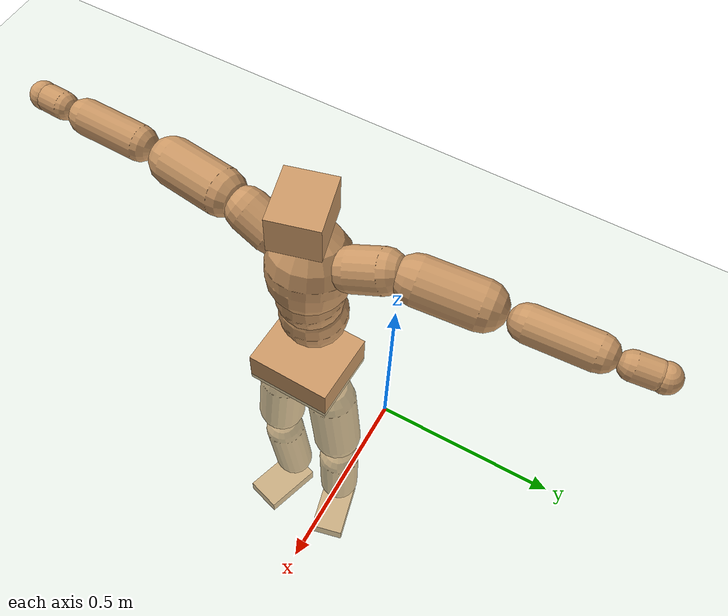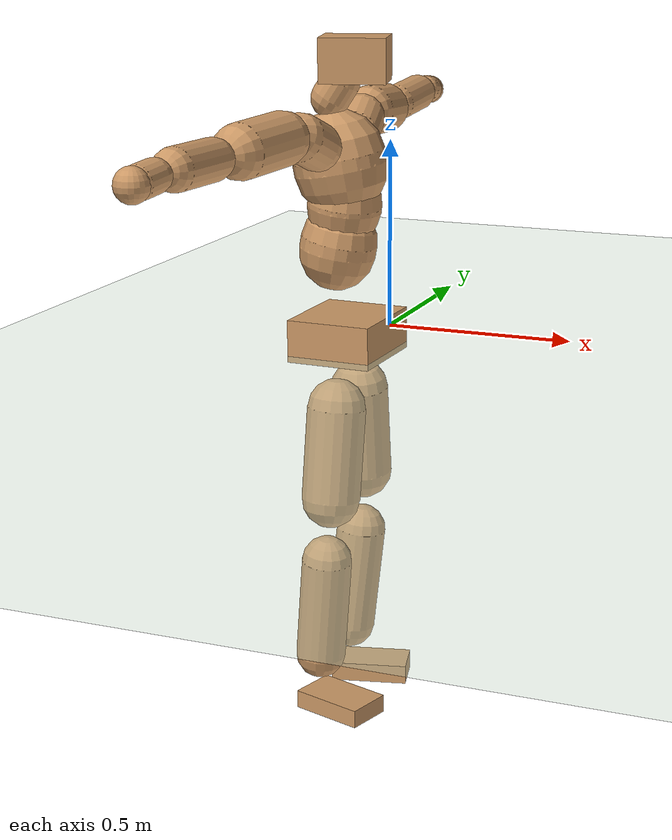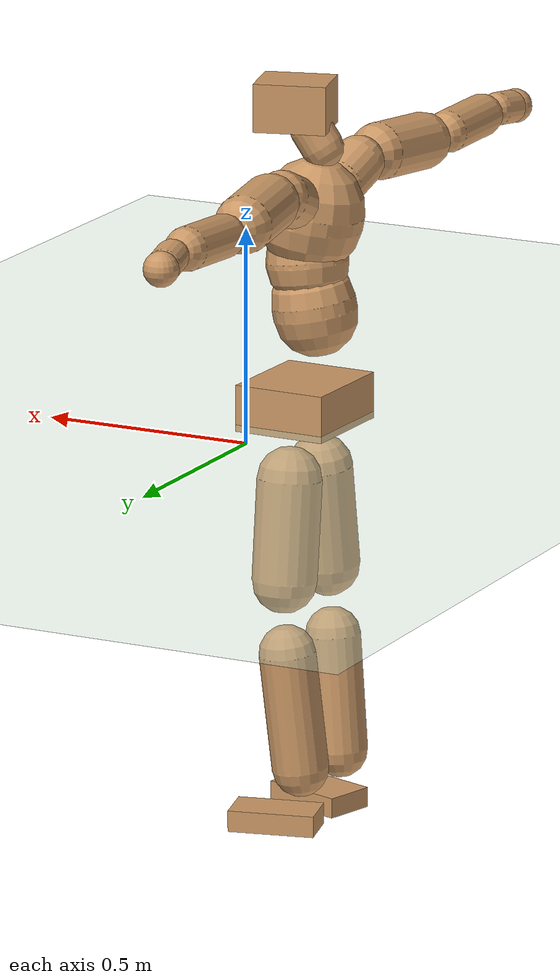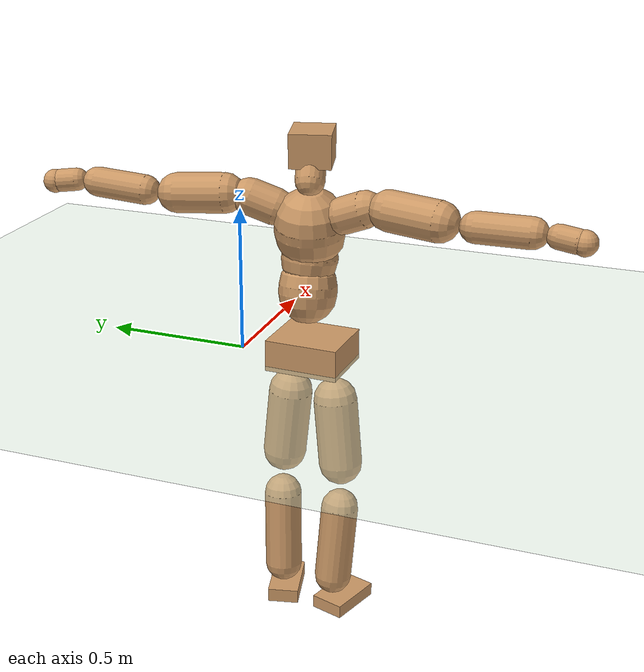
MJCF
<mujoco model="humanoid">
  <compiler coordinate="local" angle="radian"/>
  <default>
    <joint damping="0.0" armature="0.01" stiffness="0.0" limited="true"/>
    <geom conaffinity="1" condim="3" contype="7" margin="0.001" rgba="0.8 0.6 .4 1"/>
  </default>
  <asset>
    <texture type="skybox" builtin="gradient" rgb1=".4 .5 .6" rgb2="0 0 0" width="100" height="100"/>
    <texture builtin="flat" height="1278" mark="cross" markrgb="1 1 1" name="texgeom" random="0.01" rgb1="0.8 0.6 0.4" rgb2="0.8 0.6 0.4" type="cube" width="127"/>
    <texture builtin="checker" height="100" name="texplane" rgb1="0 0 0" rgb2="0.8 0.8 0.8" type="2d" width="100"/>
    <material name="MatPlane" reflectance="0.5" shininess="1" specular="1" texrepeat="60 60" texture="texplane"/>
    <material name="geom" texture="texgeom" texuniform="true"/>
  </asset>
  <worldbody>
    <light cutoff="100" diffuse="1 1 1" dir="-0 0 -1.3" directional="true" exponent="1" pos="0 0 1.3" specular=".1 .1 .1"/>
    <geom conaffinity="1" condim="3" name="floor" pos="0 0 0" rgba="0.8 0.9 0.8 1" size="100 100 .2" type="plane" material="MatPlane"/>
    <body name="Pelvis" pos="-0.0018 -0.2655 0.0444">
      <freejoint name="Pelvis"/>
      <geom type="box" contype="1" conaffinity="1" density="500" pos="-0.0127 0.0004 -0.0084" size="0.1101 0.1268 0.0544" quat="0.9999 0.0000 0.0000 -0.0157" name="Pelvis"/>
      <body name="L_Hip" pos="-0.0141 0.0723 -0.0922">
        <joint name="L_Hip_x" type="hinge" pos="0 0 0" axis="1 0 0" stiffness="800" damping="80" armature="0.02" range="-180.0000 180.0000"/>
        <joint name="L_Hip_y" type="hinge" pos="0 0 0" axis="0 1 0" stiffness="800" damping="80" armature="0.02" range="-180.0000 180.0000"/>
        <joint name="L_Hip_z" type="hinge" pos="0 0 0" axis="0 0 1" stiffness="800" damping="80" armature="0.02" range="-180.0000 180.0000"/>
        <geom type="capsule" contype="1" conaffinity="1" density="500" fromto="0.0003 0.0078 -0.0785 0.0013 0.0314 -0.3140" size="0.0752" name="L_Hip"/>
        <body name="L_Knee" pos="0.0016 0.0392 -0.3924">
          <joint name="L_Knee_x" type="hinge" pos="0 0 0" axis="1 0 0" stiffness="800" damping="80" armature="0.02" range="-180.0000 180.0000"/>
          <joint name="L_Knee_y" type="hinge" pos="0 0 0" axis="0 1 0" stiffness="800" damping="80" armature="0.02" range="-180.0000 180.0000"/>
          <joint name="L_Knee_z" type="hinge" pos="0 0 0" axis="0 0 1" stiffness="800" damping="80" armature="0.02" range="-180.0000 180.0000"/>
          <geom type="capsule" contype="1" conaffinity="1" density="500" fromto="-0.0094 -0.0040 -0.0918 -0.0374 -0.0160 -0.3671" size="0.0656" name="L_Knee"/>
          <body name="L_Ankle" pos="-0.0468 -0.02 -0.4589">
            <joint name="L_Ankle_x" type="hinge" pos="0 0 0" axis="1 0 0" stiffness="800" damping="80" armature="0.02" range="-180.0000 180.0000"/>
            <joint name="L_Ankle_y" type="hinge" pos="0 0 0" axis="0 1 0" stiffness="800" damping="80" armature="0.02" range="-180.0000 180.0000"/>
            <joint name="L_Ankle_z" type="hinge" pos="0 0 0" axis="0 0 1" stiffness="800" damping="80" armature="0.02" range="-180.0000 180.0000"/>
            <geom type="box" contype="1" conaffinity="1" density="500" pos="0.0666 0.0161 -0.0317" size="0.1008 0.0548 0.025" quat="0.9929 0.0000 0.0000 0.1187" name="L_Ankle"/>
            <body name="L_Toe" pos="0.1332 0.0323 -0.0635">
              <joint name="L_Toe_x" type="hinge" pos="0 0 0" axis="1 0 0" stiffness="500" damping="50" armature="0.02" range="-180.0000 180.0000"/>
              <joint name="L_Toe_y" type="hinge" pos="0 0 0" axis="0 1 0" stiffness="500" damping="50" armature="0.02" range="-180.0000 180.0000"/>
              <joint name="L_Toe_z" type="hinge" pos="0 0 0" axis="0 0 1" stiffness="500" damping="50" armature="0.02" range="-180.0000 180.0000"/>
              <geom type="box" contype="1" conaffinity="1" density="500" pos="0.0000 0.0000 0.0307" size="0.0011 0.0027 0.0012" quat="0.9923 0.0000 0.0000 0.1239" name="L_Toe"/>
            </body>
          </body>
        </body>
      </body>
      <body name="R_Hip" pos="-0.0079 -0.0749 -0.1012">
        <joint name="R_Hip_x" type="hinge" pos="0 0 0" axis="1 0 0" stiffness="800" damping="80" armature="0.02" range="-180.0000 180.0000"/>
        <joint name="R_Hip_y" type="hinge" pos="0 0 0" axis="0 1 0" stiffness="800" damping="80" armature="0.02" range="-180.0000 180.0000"/>
        <joint name="R_Hip_z" type="hinge" pos="0 0 0" axis="0 0 1" stiffness="800" damping="80" armature="0.02" range="-180.0000 180.0000"/>
        <geom type="capsule" contype="1" conaffinity="1" density="500" fromto="-0.0026 -0.0082 -0.0795 -0.0102 -0.0327 -0.3180" size="0.075" name="R_Hip"/>
        <body name="R_Knee" pos="-0.0128 -0.0408 -0.3975">
          <joint name="R_Knee_x" type="hinge" pos="0 0 0" axis="1 0 0" stiffness="800" damping="80" armature="0.02" range="-180.0000 180.0000"/>
          <joint name="R_Knee_y" type="hinge" pos="0 0 0" axis="0 1 0" stiffness="800" damping="80" armature="0.02" range="-180.0000 180.0000"/>
          <joint name="R_Knee_z" type="hinge" pos="0 0 0" axis="0 0 1" stiffness="800" damping="80" armature="0.02" range="-180.0000 180.0000"/>
          <geom type="capsule" contype="1" conaffinity="1" density="500" fromto="-0.0087 0.0046 -0.0905 -0.0347 0.0184 -0.3621" size="0.0648" name="R_Knee"/>
          <body name="R_Ankle" pos="-0.0434 0.023 -0.4526">
            <joint name="R_Ankle_x" type="hinge" pos="0 0 0" axis="1 0 0" stiffness="800" damping="80" armature="0.02" range="-180.0000 180.0000"/>
            <joint name="R_Ankle_y" type="hinge" pos="0 0 0" axis="0 1 0" stiffness="800" damping="80" armature="0.02" range="-180.0000 180.0000"/>
            <joint name="R_Ankle_z" type="hinge" pos="0 0 0" axis="0 0 1" stiffness="800" damping="80" armature="0.02" range="-180.0000 180.0000"/>
            <geom type="box" contype="1" conaffinity="1" density="500" pos="0.0710 -0.0218 -0.0318" size="0.0981 0.0602 0.0236" quat="0.9889 0.0000 0.0000 -0.1486" name="R_Ankle"/>
            <body name="R_Toe" pos="0.1419 -0.0436 -0.0635">
              <joint name="R_Toe_x" type="hinge" pos="0 0 0" axis="1 0 0" stiffness="500" damping="50" armature="0.02" range="-180.0000 180.0000"/>
              <joint name="R_Toe_y" type="hinge" pos="0 0 0" axis="0 1 0" stiffness="500" damping="50" armature="0.02" range="-180.0000 180.0000"/>
              <joint name="R_Toe_z" type="hinge" pos="0 0 0" axis="0 0 1" stiffness="500" damping="50" armature="0.02" range="-180.0000 180.0000"/>
              <geom type="box" contype="1" conaffinity="1" density="500" pos="0.0000 0.0000 0.0336" size="0.0012 0.0029 0.0013" quat="0.9901 0.0000 0.0000 -0.1404" name="R_Toe"/>
            </body>
          </body>
        </body>
      </body>
      <body name="Torso" pos="-0.0543 0.005 0.1427">
        <joint name="Torso_x" type="hinge" pos="0 0 0" axis="1 0 0" stiffness="1000" damping="100" armature="0.02" range="-180.0000 180.0000"/>
        <joint name="Torso_y" type="hinge" pos="0 0 0" axis="0 1 0" stiffness="1000" damping="100" armature="0.02" range="-180.0000 180.0000"/>
        <joint name="Torso_z" type="hinge" pos="0 0 0" axis="0 0 1" stiffness="1000" damping="100" armature="0.02" range="-180.0000 180.0000"/>
        <geom type="capsule" contype="1" conaffinity="1" density="500" fromto="0.0167 0.0027 0.0897 0.0111 0.0018 0.0598" size="0.0975" name="Torso"/>
        <body name="Spine" pos="0.0278 0.0044 0.1495">
          <joint name="Spine_x" type="hinge" pos="0 0 0" axis="1 0 0" stiffness="1000" damping="100" armature="0.02" range="-180.0000 180.0000"/>
          <joint name="Spine_y" type="hinge" pos="0 0 0" axis="0 1 0" stiffness="1000" damping="100" armature="0.02" range="-180.0000 180.0000"/>
          <joint name="Spine_z" type="hinge" pos="0 0 0" axis="0 0 1" stiffness="1000" damping="100" armature="0.02" range="-180.0000 180.0000"/>
          <geom type="capsule" contype="1" conaffinity="1" density="500" fromto="0.0052 -0.0020 0.0365 0.0034 -0.0013 0.0243" size="0.0948" name="Spine"/>
          <body name="Chest" pos="0.0086 -0.0033 0.0609">
            <joint name="Chest_x" type="hinge" pos="0 0 0" axis="1 0 0" stiffness="1000" damping="100" armature="0.02" range="-180.0000 180.0000"/>
            <joint name="Chest_y" type="hinge" pos="0 0 0" axis="0 1 0" stiffness="1000" damping="100" armature="0.02" range="-180.0000 180.0000"/>
            <joint name="Chest_z" type="hinge" pos="0 0 0" axis="0 0 1" stiffness="1000" damping="100" armature="0.02" range="-180.0000 180.0000"/>
            <geom type="capsule" contype="1" conaffinity="1" density="500" fromto="-0.0170 -0.0041 0.0940 -0.0113 -0.0028 0.0626" size="0.118" name="Chest"/>
            <body name="Neck" pos="-0.0457 -0.0124 0.2227">
              <joint name="Neck_x" type="hinge" pos="0 0 0" axis="1 0 0" stiffness="500" damping="50" armature="0.02" range="-180.0000 180.0000"/>
              <joint name="Neck_y" type="hinge" pos="0 0 0" axis="0 1 0" stiffness="500" damping="50" armature="0.02" range="-180.0000 180.0000"/>
              <joint name="Neck_z" type="hinge" pos="0 0 0" axis="0 0 1" stiffness="500" damping="50" armature="0.02" range="-180.0000 180.0000"/>
              <geom type="capsule" contype="1" conaffinity="1" density="500" fromto="0.0093 0.0022 0.0148 0.0371 0.0086 0.0593" size="0.0489" name="Neck"/>
              <body name="Head" pos="0.0463 0.0108 0.0741">
                <joint name="Head_x" type="hinge" pos="0 0 0" axis="1 0 0" stiffness="500" damping="50" armature="0.02" range="-180.0000 180.0000"/>
                <joint name="Head_y" type="hinge" pos="0 0 0" axis="0 1 0" stiffness="500" damping="50" armature="0.02" range="-180.0000 180.0000"/>
                <joint name="Head_z" type="hinge" pos="0 0 0" axis="0 0 1" stiffness="500" damping="50" armature="0.02" range="-180.0000 180.0000"/>
                <geom type="box" contype="1" conaffinity="1" density="500" pos="0.0242 0.0064 0.0381" size="0.0833 0.0688 0.0557" quat="0.9916 0.0000 0.0000 0.1290" name="Head"/>
              </body>
            </body>
            <body name="L_Thorax" pos="-0.0162 0.0847 0.1254">
              <joint name="L_Thorax_x" type="hinge" pos="0 0 0" axis="1 0 0" stiffness="500" damping="50" armature="0.02" range="-180.0000 180.0000"/>
              <joint name="L_Thorax_y" type="hinge" pos="0 0 0" axis="0 1 0" stiffness="500" damping="50" armature="0.02" range="-180.0000 180.0000"/>
              <joint name="L_Thorax_z" type="hinge" pos="0 0 0" axis="0 0 1" stiffness="500" damping="50" armature="0.02" range="-180.0000 180.0000"/>
              <geom type="capsule" contype="1" conaffinity="1" density="500" fromto="-0.0053 0.0280 0.0101 -0.0212 0.1120 0.0404" size="0.0618" name="L_Thorax"/>
              <body name="L_Shoulder" pos="-0.0265 0.14 0.0505">
                <joint name="L_Shoulder_x" type="hinge" pos="0 0 0" axis="1 0 0" stiffness="500" damping="50" armature="0.02" range="-720.0000 720.0000"/>
                <joint name="L_Shoulder_y" type="hinge" pos="0 0 0" axis="0 1 0" stiffness="500" damping="50" armature="0.02" range="-720.0000 720.0000"/>
                <joint name="L_Shoulder_z" type="hinge" pos="0 0 0" axis="0 0 1" stiffness="500" damping="50" armature="0.02" range="-720.0000 720.0000"/>
                <geom type="capsule" contype="1" conaffinity="1" density="500" fromto="-0.0066 0.0546 -0.0037 -0.0262 0.2182 -0.0146" size="0.0669" name="L_Shoulder"/>
                <body name="L_Elbow" pos="-0.0328 0.2728 -0.0183">
                  <joint name="L_Elbow_x" type="hinge" pos="0 0 0" axis="1 0 0" stiffness="500" damping="50" armature="0.02" range="-720.0000 720.0000"/>
                  <joint name="L_Elbow_y" type="hinge" pos="0 0 0" axis="0 1 0" stiffness="500" damping="50" armature="0.02" range="-720.0000 720.0000"/>
                  <joint name="L_Elbow_z" type="hinge" pos="0 0 0" axis="0 0 1" stiffness="500" damping="50" armature="0.02" range="-720.0000 720.0000"/>
                  <geom type="capsule" contype="1" conaffinity="1" density="500" fromto="-0.0007 0.0590 0.0036 -0.0029 0.2361 0.0144" size="0.0498" name="L_Elbow"/>
                  <body name="L_Wrist" pos="-0.0036 0.2951 0.0181">
                    <joint name="L_Wrist_x" type="hinge" pos="0 0 0" axis="1 0 0" stiffness="300" damping="30" armature="0.02" range="-180.0000 180.0000"/>
                    <joint name="L_Wrist_y" type="hinge" pos="0 0 0" axis="0 1 0" stiffness="300" damping="30" armature="0.02" range="-180.0000 180.0000"/>
                    <joint name="L_Wrist_z" type="hinge" pos="0 0 0" axis="0 0 1" stiffness="300" damping="30" armature="0.02" range="-180.0000 180.0000"/>
                    <geom type="capsule" contype="1" conaffinity="1" density="500" fromto="-0.0035 0.0193 -0.0024 -0.0141 0.0773 -0.0096" size="0.0384" name="L_Wrist"/>
                    <body name="L_Hand" pos="-0.0176 0.0967 -0.012">
                      <joint name="L_Hand_x" type="hinge" pos="0 0 0" axis="1 0 0" stiffness="300" damping="30" armature="0.02" range="-180.0000 180.0000"/>
                      <joint name="L_Hand_y" type="hinge" pos="0 0 0" axis="0 1 0" stiffness="300" damping="30" armature="0.02" range="-180.0000 180.0000"/>
                      <joint name="L_Hand_z" type="hinge" pos="0 0 0" axis="0 0 1" stiffness="300" damping="30" armature="0.02" range="-180.0000 180.0000"/>
                      <geom type="sphere" contype="1" conaffinity="1" density="500" size="0.0397" pos="0.0000 0.0000 0.0000" name="L_Hand"/>
                    </body>
                  </body>
                </body>
              </body>
            </body>
            <body name="R_Thorax" pos="-0.0231 -0.0931 0.1217">
              <joint name="R_Thorax_x" type="hinge" pos="0 0 0" axis="1 0 0" stiffness="500" damping="50" armature="0.02" range="-180.0000 180.0000"/>
              <joint name="R_Thorax_y" type="hinge" pos="0 0 0" axis="0 1 0" stiffness="500" damping="50" armature="0.02" range="-180.0000 180.0000"/>
              <joint name="R_Thorax_z" type="hinge" pos="0 0 0" axis="0 0 1" stiffness="500" damping="50" armature="0.02" range="-180.0000 180.0000"/>
              <geom type="capsule" contype="1" conaffinity="1" density="500" fromto="-0.0027 -0.0258 0.0106 -0.0109 -0.1034 0.0424" size="0.0611" name="R_Thorax"/>
              <body name="R_Shoulder" pos="-0.0136 -0.1292 0.053">
                <joint name="R_Shoulder_x" type="hinge" pos="0 0 0" axis="1 0 0" stiffness="500" damping="50" armature="0.02" range="-720.0000 720.0000"/>
                <joint name="R_Shoulder_y" type="hinge" pos="0 0 0" axis="0 1 0" stiffness="500" damping="50" armature="0.02" range="-720.0000 720.0000"/>
                <joint name="R_Shoulder_z" type="hinge" pos="0 0 0" axis="0 0 1" stiffness="500" damping="50" armature="0.02" range="-720.0000 720.0000"/>
                <geom type="capsule" contype="1" conaffinity="1" density="500" fromto="-0.0091 -0.0567 -0.0027 -0.0363 -0.2266 -0.0109" size="0.0671" name="R_Shoulder"/>
                <body name="R_Elbow" pos="-0.0453 -0.2833 -0.0136">
                  <joint name="R_Elbow_x" type="hinge" pos="0 0 0" axis="1 0 0" stiffness="500" damping="50" armature="0.02" range="-720.0000 720.0000"/>
                  <joint name="R_Elbow_y" type="hinge" pos="0 0 0" axis="0 1 0" stiffness="500" damping="50" armature="0.02" range="-720.0000 720.0000"/>
                  <joint name="R_Elbow_z" type="hinge" pos="0 0 0" axis="0 0 1" stiffness="500" damping="50" armature="0.02" range="-720.0000 720.0000"/>
                  <geom type="capsule" contype="1" conaffinity="1" density="500" fromto="-0.0011 -0.0588 0.0010 -0.0046 -0.2354 0.0039" size="0.0501" name="R_Elbow"/>
                  <body name="R_Wrist" pos="-0.0057 -0.2942 0.0049">
                    <joint name="R_Wrist_x" type="hinge" pos="0 0 0" axis="1 0 0" stiffness="300" damping="30" armature="0.02" range="-180.0000 180.0000"/>
                    <joint name="R_Wrist_y" type="hinge" pos="0 0 0" axis="0 1 0" stiffness="300" damping="30" armature="0.02" range="-180.0000 180.0000"/>
                    <joint name="R_Wrist_z" type="hinge" pos="0 0 0" axis="0 0 1" stiffness="300" damping="30" armature="0.02" range="-180.0000 180.0000"/>
                    <geom type="capsule" contype="1" conaffinity="1" density="500" fromto="-0.0022 -0.0199 -0.0020 -0.0090 -0.0795 -0.0081" size="0.0392" name="R_Wrist"/>
                    <body name="R_Hand" pos="-0.0112 -0.0993 -0.0101">
                      <joint name="R_Hand_x" type="hinge" pos="0 0 0" axis="1 0 0" stiffness="300" damping="30" armature="0.02" range="-180.0000 180.0000"/>
                      <joint name="R_Hand_y" type="hinge" pos="0 0 0" axis="0 1 0" stiffness="300" damping="30" armature="0.02" range="-180.0000 180.0000"/>
                      <joint name="R_Hand_z" type="hinge" pos="0 0 0" axis="0 0 1" stiffness="300" damping="30" armature="0.02" range="-180.0000 180.0000"/>
                      <geom type="sphere" contype="1" conaffinity="1" density="500" size="0.0404" pos="0.0000 0.0000 0.0000" name="R_Hand"/>
                    </body>
                  </body>
                </body>
              </body>
            </body>
          </body>
        </body>
      </body>
    </body>
  </worldbody>
  <actuator>
    <motor name="L_Hip_x" joint="L_Hip_x" gear="500"/>
    <motor name="L_Hip_y" joint="L_Hip_y" gear="500"/>
    <motor name="L_Hip_z" joint="L_Hip_z" gear="500"/>
    <motor name="L_Knee_x" joint="L_Knee_x" gear="500"/>
    <motor name="L_Knee_y" joint="L_Knee_y" gear="500"/>
    <motor name="L_Knee_z" joint="L_Knee_z" gear="500"/>
    <motor name="L_Ankle_x" joint="L_Ankle_x" gear="500"/>
    <motor name="L_Ankle_y" joint="L_Ankle_y" gear="500"/>
    <motor name="L_Ankle_z" joint="L_Ankle_z" gear="500"/>
    <motor name="L_Toe_x" joint="L_Toe_x" gear="500"/>
    <motor name="L_Toe_y" joint="L_Toe_y" gear="500"/>
    <motor name="L_Toe_z" joint="L_Toe_z" gear="500"/>
    <motor name="R_Hip_x" joint="R_Hip_x" gear="500"/>
    <motor name="R_Hip_y" joint="R_Hip_y" gear="500"/>
    <motor name="R_Hip_z" joint="R_Hip_z" gear="500"/>
    <motor name="R_Knee_x" joint="R_Knee_x" gear="500"/>
    <motor name="R_Knee_y" joint="R_Knee_y" gear="500"/>
    <motor name="R_Knee_z" joint="R_Knee_z" gear="500"/>
    <motor name="R_Ankle_x" joint="R_Ankle_x" gear="500"/>
    <motor name="R_Ankle_y" joint="R_Ankle_y" gear="500"/>
    <motor name="R_Ankle_z" joint="R_Ankle_z" gear="500"/>
    <motor name="R_Toe_x" joint="R_Toe_x" gear="500"/>
    <motor name="R_Toe_y" joint="R_Toe_y" gear="500"/>
    <motor name="R_Toe_z" joint="R_Toe_z" gear="500"/>
    <motor name="Torso_x" joint="Torso_x" gear="500"/>
    <motor name="Torso_y" joint="Torso_y" gear="500"/>
    <motor name="Torso_z" joint="Torso_z" gear="500"/>
    <motor name="Spine_x" joint="Spine_x" gear="500"/>
    <motor name="Spine_y" joint="Spine_y" gear="500"/>
    <motor name="Spine_z" joint="Spine_z" gear="500"/>
    <motor name="Chest_x" joint="Chest_x" gear="500"/>
    <motor name="Chest_y" joint="Chest_y" gear="500"/>
    <motor name="Chest_z" joint="Chest_z" gear="500"/>
    <motor name="Neck_x" joint="Neck_x" gear="500"/>
    <motor name="Neck_y" joint="Neck_y" gear="500"/>
    <motor name="Neck_z" joint="Neck_z" gear="500"/>
    <motor name="Head_x" joint="Head_x" gear="500"/>
    <motor name="Head_y" joint="Head_y" gear="500"/>
    <motor name="Head_z" joint="Head_z" gear="500"/>
    <motor name="L_Thorax_x" joint="L_Thorax_x" gear="500"/>
    <motor name="L_Thorax_y" joint="L_Thorax_y" gear="500"/>
    <motor name="L_Thorax_z" joint="L_Thorax_z" gear="500"/>
    <motor name="L_Shoulder_x" joint="L_Shoulder_x" gear="500"/>
    <motor name="L_Shoulder_y" joint="L_Shoulder_y" gear="500"/>
    <motor name="L_Shoulder_z" joint="L_Shoulder_z" gear="500"/>
    <motor name="L_Elbow_x" joint="L_Elbow_x" gear="500"/>
    <motor name="L_Elbow_y" joint="L_Elbow_y" gear="500"/>
    <motor name="L_Elbow_z" joint="L_Elbow_z" gear="500"/>
    <motor name="L_Wrist_x" joint="L_Wrist_x" gear="500"/>
    <motor name="L_Wrist_y" joint="L_Wrist_y" gear="500"/>
    <motor name="L_Wrist_z" joint="L_Wrist_z" gear="500"/>
    <motor name="L_Hand_x" joint="L_Hand_x" gear="500"/>
    <motor name="L_Hand_y" joint="L_Hand_y" gear="500"/>
    <motor name="L_Hand_z" joint="L_Hand_z" gear="500"/>
    <motor name="R_Thorax_x" joint="R_Thorax_x" gear="500"/>
    <motor name="R_Thorax_y" joint="R_Thorax_y" gear="500"/>
    <motor name="R_Thorax_z" joint="R_Thorax_z" gear="500"/>
    <motor name="R_Shoulder_x" joint="R_Shoulder_x" gear="500"/>
    <motor name="R_Shoulder_y" joint="R_Shoulder_y" gear="500"/>
    <motor name="R_Shoulder_z" joint="R_Shoulder_z" gear="500"/>
    <motor name="R_Elbow_x" joint="R_Elbow_x" gear="500"/>
    <motor name="R_Elbow_y" joint="R_Elbow_y" gear="500"/>
    <motor name="R_Elbow_z" joint="R_Elbow_z" gear="500"/>
    <motor name="R_Wrist_x" joint="R_Wrist_x" gear="500"/>
    <motor name="R_Wrist_y" joint="R_Wrist_y" gear="500"/>
    <motor name="R_Wrist_z" joint="R_Wrist_z" gear="500"/>
    <motor name="R_Hand_x" joint="R_Hand_x" gear="500"/>
    <motor name="R_Hand_y" joint="R_Hand_y" gear="500"/>
    <motor name="R_Hand_z" joint="R_Hand_z" gear="500"/>
  </actuator>
  <contact>
    <exclude body1="Torso" body2="Chest"/>
    <exclude body1="Head" body2="Chest"/>
    <exclude body1="R_Knee" body2="R_Toe"/>
    <exclude body1="R_Knee" body2="L_Ankle"/>
    <exclude body1="R_Knee" body2="L_Toe"/>
    <exclude body1="L_Knee" body2="L_Toe"/>
    <exclude body1="L_Knee" body2="R_Ankle"/>
    <exclude body1="L_Knee" body2="R_Toe"/>
    <exclude body1="L_Shoulder" body2="Chest"/>
    <exclude body1="R_Shoulder" body2="Chest"/>
  </contact>
  <sensor/>
  <size njmax="700" nconmax="700"/>
</mujoco>
